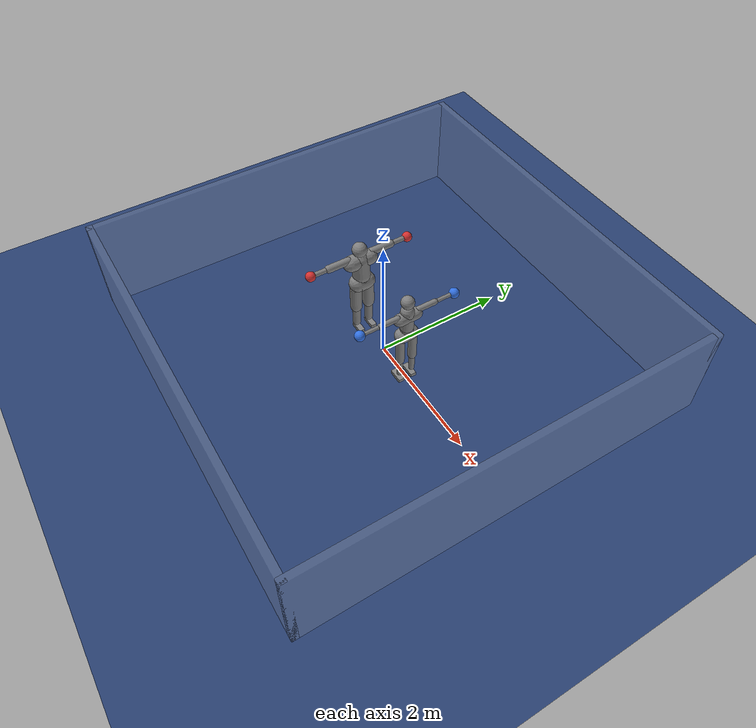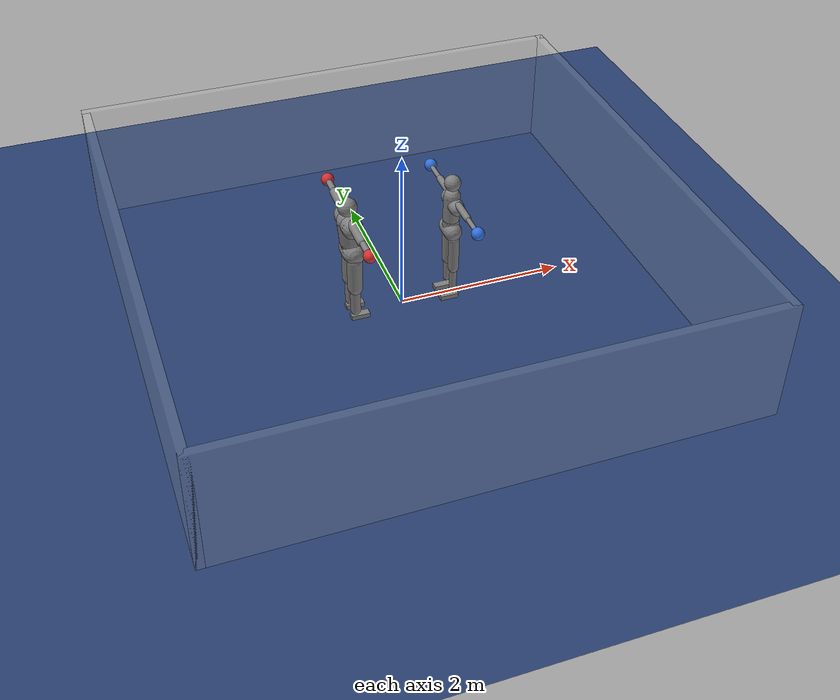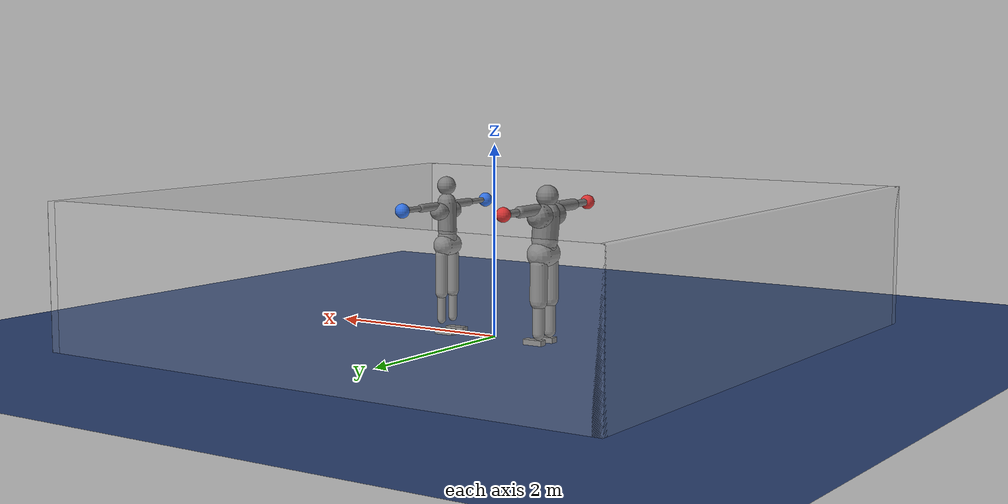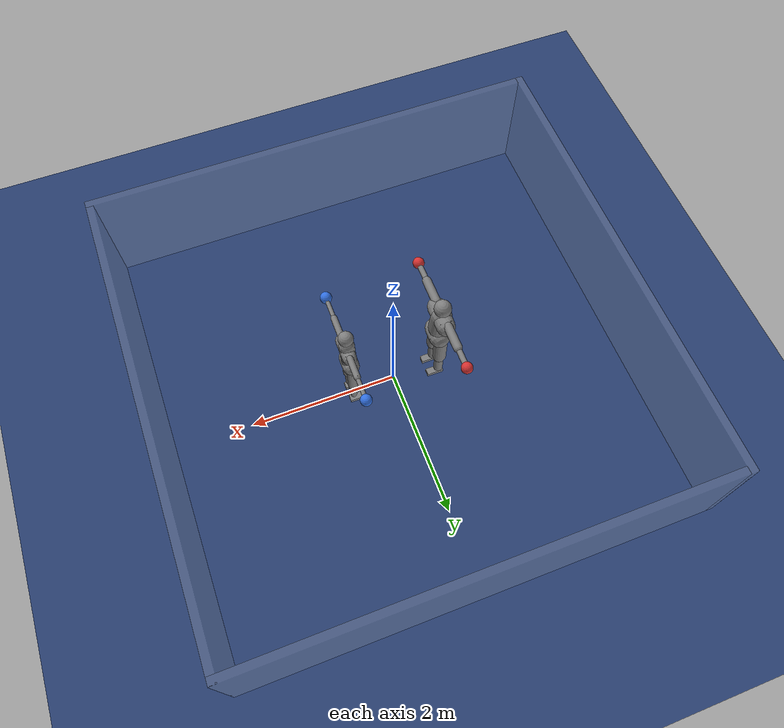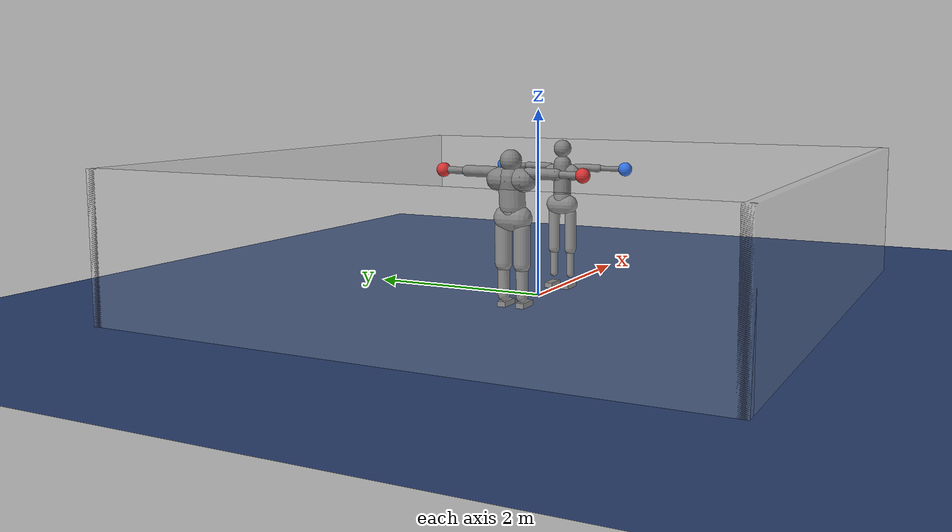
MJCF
<mujoco model="grandpa_vs_nick_spar">
  <compiler angle="degree" inertiafromgeom="true" autolimits="true"/>
  <option timestep="0.005" iterations="10" ls_iterations="10" integrator="implicitfast">
    <flag eulerdamp="disable"/>
  </option>
  <default>
    <geom contype="1" conaffinity="1" condim="3" friction="1.0 0.005 0.0001" density="1000" margin="0"/>
    <joint limited="true"/>
    <position ctrllimited="true"/>
  </default>
  <asset>
    <texture name="grid" type="2d" builtin="checker" rgb1=".18 .28 .48" rgb2=".14 .22 .40" width="300" height="300"/>
    <material name="grid" texture="grid" texrepeat="6 6" reflectance="0"/>
  </asset>
  <worldbody>
    <light pos="0 0 5" dir="0 0 -1" directional="true"/>
    <geom name="floor" type="plane" size="0 0 0.05" material="grid" friction="1.0 0.005 0.0001"/>
    <geom name="rope_n" type="box" pos="0.0000 3.1000 0.7500" size="3.1500 0.0500 0.7500" rgba="0.8 0.8 0.8 0.15"/>
    <geom name="rope_s" type="box" pos="0.0000 -3.1000 0.7500" size="3.1500 0.0500 0.7500" rgba="0.8 0.8 0.8 0.15"/>
    <geom name="rope_e" type="box" pos="3.1000 0.0000 0.7500" size="0.0500 3.1500 0.7500" rgba="0.8 0.8 0.8 0.15"/>
    <geom name="rope_w" type="box" pos="-3.1000 0.0000 0.7500" size="0.0500 3.1500 0.7500" rgba="0.8 0.8 0.8 0.15"/>
    <body name="a_pelvis" pos="-0.6000 0.0000 0.9146" quat="1.00000 0 0 0.00000">
      <freejoint name="a_root"/>
      <geom name="a_pelvis_geom" type="capsule" fromto="0.0000 -0.0700 0.0000 0.0000 0.0700 0.0000" size="0.1350" mass="6.7965" />
      <geom name="a_pelvis_up" type="capsule" fromto="0.0000 0.0000 0.0000 -0.0099 0.0000 0.0920" size="0.1215" mass="4.3789" />
      <body name="a_torso" pos="-0.0099 0.0000 0.1120">
        <joint name="a_abdomen_z" type="hinge" axis="0 0 1" range="-45 45" damping="0.5" armature="0.08" stiffness="0"/>
        <joint name="a_abdomen_y" type="hinge" axis="0 1 0" range="-60 30" damping="0.5" armature="0.08" stiffness="0"/>
        <joint name="a_abdomen_x" type="hinge" axis="1 0 0" range="-35 35" damping="0.5" armature="0.08" stiffness="0"/>
        <geom name="a_torso_geom" type="capsule" fromto="0.0000 0.0000 0.0200 -0.0268 0.0000 0.2932" size="0.1350" mass="27.9385" />
        <geom name="a_chest_geom" type="capsule" fromto="-0.0230 -0.1505 0.2866 -0.0230 0.1505 0.2866" size="0.1215" mass="0.5"/>
        <geom name="a_head_geom" type="sphere" pos="-0.0325 0.0000 0.4807" size="0.1127" mass="6.3747" />
        <body name="a_upper_arm_l" pos="-0.0287 0.1881 0.3582">
          <joint name="a_shoulder_x_l" type="hinge" axis="1 0 0" range="-170 30" damping="0.5" armature="0.03" stiffness="0"/>
          <joint name="a_shoulder_z_l" type="hinge" axis="0 0 1" range="-110 110" damping="0.5" armature="0.03" stiffness="0"/>
          <geom name="a_upper_arm_l_geom" type="capsule" fromto="0.0000 0.0000 0.0000 0.0000 0.3197 0.0000" size="0.0580" mass="2.2036" />
          <body name="a_forearm_l" pos="0.0000 0.3197 0.0000">
            <joint name="a_elbow_l" type="hinge" axis="0 0 1" range="-150 0" damping="0.5" armature="0.02" stiffness="0"/>
            <geom name="a_forearm_l_geom" type="capsule" fromto="0.0000 0.0000 0.0000 0.0000 0.2162 0.0000" size="0.0373" mass="1.2592" />
            <geom name="a_glove_l" type="sphere" pos="0.0000 0.2837 0.0000" size="0.0750" mass="0.7552" rgba="0.85 0.2 0.2 1"/>
          </body>
        </body>
        <body name="a_upper_arm_r" pos="-0.0287 -0.1881 0.3582">
          <joint name="a_shoulder_x_r" type="hinge" axis="1 0 0" range="-30 170" damping="0.5" armature="0.03" stiffness="0"/>
          <joint name="a_shoulder_z_r" type="hinge" axis="0 0 1" range="-110 110" damping="0.5" armature="0.03" stiffness="0"/>
          <geom name="a_upper_arm_r_geom" type="capsule" fromto="0.0000 0.0000 0.0000 0.0000 -0.3197 0.0000" size="0.0580" mass="2.2036" />
          <body name="a_forearm_r" pos="0.0000 -0.3197 0.0000">
            <joint name="a_elbow_r" type="hinge" axis="0 0 1" range="0 150" damping="0.5" armature="0.02" stiffness="0"/>
            <geom name="a_forearm_r_geom" type="capsule" fromto="0.0000 0.0000 0.0000 0.0000 -0.2162 0.0000" size="0.0373" mass="1.2592" />
            <geom name="a_glove_r" type="sphere" pos="0.0000 -0.2837 0.0000" size="0.0750" mass="0.7552" rgba="0.85 0.2 0.2 1"/>
          </body>
        </body>
      </body>
      <body name="a_thigh_l" pos="-0.0082 0.1049 -0.0932">
        <joint name="a_hip_x_l" type="hinge" axis="1 0 0" range="-40 40" damping="0.5" armature="0.1" stiffness="0"/>
        <joint name="a_hip_z_l" type="hinge" axis="0 0 1" range="-35 35" damping="0.5" armature="0.1" stiffness="0"/>
        <joint name="a_hip_y_l" type="hinge" axis="0 1 0" range="-120 30" damping="0.5" armature="0.1" stiffness="0"/>
        <geom name="a_thigh_l_geom" type="capsule" fromto="0.0000 0.0000 0.0000 0.0000 0.0000 -0.3769" size="0.0900" mass="7.8700" />
        <body name="a_shin_l" pos="0.0000 0.0000 -0.3769">
          <joint name="a_knee_l" type="hinge" axis="0 1 0" range="0 150" damping="0.5" armature="0.1" stiffness="0"/>
          <geom name="a_shin_l_geom" type="capsule" fromto="0.0000 0.0000 0.0000 0.0000 0.0000 -0.3360" size="0.0620" mass="3.6596" />
          <body name="a_foot_l" pos="0.0000 0.0000 -0.3360">
            <joint name="a_ankle_y_l" type="hinge" axis="0 1 0" range="-20 50" damping="0.5" armature="0.03" stiffness="0"/>
            <joint name="a_ankle_x_l" type="hinge" axis="1 0 0" range="-25 25" damping="0.5" armature="0.03" stiffness="0"/>
            <geom name="a_foot_l_geom" type="box" pos="0.0506 0.0000 -0.0887" size="0.1100 0.0450 0.0280" mass="1.1412" friction="1.0 0.005 0.0001"/>
            <site name="a_foot_l_site" pos="0.0506 0.0000 -0.0887" size="0.01"/>
          </body>
        </body>
      </body>
      <body name="a_thigh_r" pos="-0.0082 -0.1049 -0.0932">
        <joint name="a_hip_x_r" type="hinge" axis="1 0 0" range="-40 40" damping="0.5" armature="0.1" stiffness="0"/>
        <joint name="a_hip_z_r" type="hinge" axis="0 0 1" range="-35 35" damping="0.5" armature="0.1" stiffness="0"/>
        <joint name="a_hip_y_r" type="hinge" axis="0 1 0" range="-120 30" damping="0.5" armature="0.1" stiffness="0"/>
        <geom name="a_thigh_r_geom" type="capsule" fromto="0.0000 0.0000 0.0000 0.0000 0.0000 -0.3769" size="0.0900" mass="7.8700" />
        <body name="a_shin_r" pos="0.0000 0.0000 -0.3769">
          <joint name="a_knee_r" type="hinge" axis="0 1 0" range="0 150" damping="0.5" armature="0.1" stiffness="0"/>
          <geom name="a_shin_r_geom" type="capsule" fromto="0.0000 0.0000 0.0000 0.0000 0.0000 -0.3360" size="0.0620" mass="3.6596" />
          <body name="a_foot_r" pos="0.0000 0.0000 -0.3360">
            <joint name="a_ankle_y_r" type="hinge" axis="0 1 0" range="-20 50" damping="0.5" armature="0.03" stiffness="0"/>
            <joint name="a_ankle_x_r" type="hinge" axis="1 0 0" range="-25 25" damping="0.5" armature="0.03" stiffness="0"/>
            <geom name="a_foot_r_geom" type="box" pos="0.0506 0.0000 -0.0887" size="0.1100 0.0450 0.0280" mass="1.1412" friction="1.0 0.005 0.0001"/>
            <site name="a_foot_r_site" pos="0.0506 0.0000 -0.0887" size="0.01"/>
          </body>
        </body>
      </body>
    </body>
    <body name="b_pelvis" pos="0.6000 0.0000 0.9269" quat="0.00000 0 0 1.00000">
      <freejoint name="b_root"/>
      <geom name="b_pelvis_geom" type="capsule" fromto="0.0000 -0.0700 0.0000 0.0000 0.0700 0.0000" size="0.1090" mass="4.9049" />
      <geom name="b_pelvis_up" type="capsule" fromto="0.0000 0.0000 0.0000 -0.0026 0.0000 0.1033" size="0.0981" mass="3.2601" />
      <body name="b_torso" pos="-0.0026 0.0000 0.1233">
        <joint name="b_abdomen_z" type="hinge" axis="0 0 1" range="-45 45" damping="0.5" armature="0.08" stiffness="0"/>
        <joint name="b_abdomen_y" type="hinge" axis="0 1 0" range="-60 30" damping="0.5" armature="0.08" stiffness="0"/>
        <joint name="b_abdomen_x" type="hinge" axis="1 0 0" range="-35 35" damping="0.5" armature="0.08" stiffness="0"/>
        <geom name="b_torso_geom" type="capsule" fromto="0.0000 0.0000 0.0200 -0.0072 0.0000 0.3240" size="0.0987" mass="20.4125" />
        <geom name="b_chest_geom" type="capsule" fromto="-0.0187 -0.1313 0.2370 -0.0187 0.1313 0.2370" size="0.0888" mass="0.5"/>
        <geom name="b_head_geom" type="sphere" pos="-0.0087 0.0000 0.5025" size="0.0973" mass="4.6575" />
        <body name="b_upper_arm_l" pos="-0.0234 0.1641 0.2962">
          <joint name="b_shoulder_x_l" type="hinge" axis="1 0 0" range="-170 30" damping="0.5" armature="0.03" stiffness="0"/>
          <joint name="b_shoulder_z_l" type="hinge" axis="0 0 1" range="-110 110" damping="0.5" armature="0.03" stiffness="0"/>
          <geom name="b_upper_arm_l_geom" type="capsule" fromto="0.0000 0.0000 0.0000 0.0000 0.2664 0.0000" size="0.0419" mass="1.6100" />
          <body name="b_forearm_l" pos="0.0000 0.2664 0.0000">
            <joint name="b_elbow_l" type="hinge" axis="0 0 1" range="-150 0" damping="0.5" armature="0.02" stiffness="0"/>
            <geom name="b_forearm_l_geom" type="capsule" fromto="0.0000 0.0000 0.0000 0.0000 0.2467 0.0000" size="0.0280" mass="0.9200" />
            <geom name="b_glove_l" type="sphere" pos="0.0000 0.3142 0.0000" size="0.0750" mass="0.6280" rgba="0.2 0.45 0.9 1"/>
          </body>
        </body>
        <body name="b_upper_arm_r" pos="-0.0234 -0.1641 0.2962">
          <joint name="b_shoulder_x_r" type="hinge" axis="1 0 0" range="-30 170" damping="0.5" armature="0.03" stiffness="0"/>
          <joint name="b_shoulder_z_r" type="hinge" axis="0 0 1" range="-110 110" damping="0.5" armature="0.03" stiffness="0"/>
          <geom name="b_upper_arm_r_geom" type="capsule" fromto="0.0000 0.0000 0.0000 0.0000 -0.2664 0.0000" size="0.0419" mass="1.6100" />
          <body name="b_forearm_r" pos="0.0000 -0.2664 0.0000">
            <joint name="b_elbow_r" type="hinge" axis="0 0 1" range="0 150" damping="0.5" armature="0.02" stiffness="0"/>
            <geom name="b_forearm_r_geom" type="capsule" fromto="0.0000 0.0000 0.0000 0.0000 -0.2467 0.0000" size="0.0280" mass="0.9200" />
            <geom name="b_glove_r" type="sphere" pos="0.0000 -0.3142 0.0000" size="0.0750" mass="0.6280" rgba="0.2 0.45 0.9 1"/>
          </body>
        </body>
      </body>
      <body name="b_thigh_l" pos="-0.0079 0.1002 -0.0993">
        <joint name="b_hip_x_l" type="hinge" axis="1 0 0" range="-40 40" damping="0.5" armature="0.1" stiffness="0"/>
        <joint name="b_hip_z_l" type="hinge" axis="0 0 1" range="-35 35" damping="0.5" armature="0.1" stiffness="0"/>
        <joint name="b_hip_y_l" type="hinge" axis="0 1 0" range="-120 30" damping="0.5" armature="0.1" stiffness="0"/>
        <geom name="b_thigh_l_geom" type="capsule" fromto="0.0000 0.0000 0.0000 0.0000 0.0000 -0.4004" size="0.0639" mass="5.7500" />
        <body name="b_shin_l" pos="0.0000 0.0000 -0.4004">
          <joint name="b_knee_l" type="hinge" axis="0 1 0" range="0 150" damping="0.5" armature="0.1" stiffness="0"/>
          <geom name="b_shin_l_geom" type="capsule" fromto="0.0000 0.0000 0.0000 0.0000 0.0000 -0.2841" size="0.0429" mass="2.6738" />
          <body name="b_foot_l" pos="0.0000 0.0000 -0.2841">
            <joint name="b_ankle_y_l" type="hinge" axis="0 1 0" range="-20 50" damping="0.5" armature="0.03" stiffness="0"/>
            <joint name="b_ankle_x_l" type="hinge" axis="1 0 0" range="-25 25" damping="0.5" armature="0.03" stiffness="0"/>
            <geom name="b_foot_l_geom" type="box" pos="0.0506 0.0000 -0.1233" size="0.1100 0.0450 0.0280" mass="0.8337" friction="1.0 0.005 0.0001"/>
            <site name="b_foot_l_site" pos="0.0506 0.0000 -0.1233" size="0.01"/>
          </body>
        </body>
      </body>
      <body name="b_thigh_r" pos="-0.0079 -0.1002 -0.0993">
        <joint name="b_hip_x_r" type="hinge" axis="1 0 0" range="-40 40" damping="0.5" armature="0.1" stiffness="0"/>
        <joint name="b_hip_z_r" type="hinge" axis="0 0 1" range="-35 35" damping="0.5" armature="0.1" stiffness="0"/>
        <joint name="b_hip_y_r" type="hinge" axis="0 1 0" range="-120 30" damping="0.5" armature="0.1" stiffness="0"/>
        <geom name="b_thigh_r_geom" type="capsule" fromto="0.0000 0.0000 0.0000 0.0000 0.0000 -0.4004" size="0.0639" mass="5.7500" />
        <body name="b_shin_r" pos="0.0000 0.0000 -0.4004">
          <joint name="b_knee_r" type="hinge" axis="0 1 0" range="0 150" damping="0.5" armature="0.1" stiffness="0"/>
          <geom name="b_shin_r_geom" type="capsule" fromto="0.0000 0.0000 0.0000 0.0000 0.0000 -0.2841" size="0.0429" mass="2.6738" />
          <body name="b_foot_r" pos="0.0000 0.0000 -0.2841">
            <joint name="b_ankle_y_r" type="hinge" axis="0 1 0" range="-20 50" damping="0.5" armature="0.03" stiffness="0"/>
            <joint name="b_ankle_x_r" type="hinge" axis="1 0 0" range="-25 25" damping="0.5" armature="0.03" stiffness="0"/>
            <geom name="b_foot_r_geom" type="box" pos="0.0506 0.0000 -0.1233" size="0.1100 0.0450 0.0280" mass="0.8337" friction="1.0 0.005 0.0001"/>
            <site name="b_foot_r_site" pos="0.0506 0.0000 -0.1233" size="0.01"/>
          </body>
        </body>
      </body>
    </body>
  </worldbody>
  <contact>
    <exclude body1="a_pelvis" body2="a_torso"/>
    <exclude body1="a_pelvis" body2="a_thigh_l"/>
    <exclude body1="a_thigh_l" body2="a_shin_l"/>
    <exclude body1="a_shin_l" body2="a_foot_l"/>
    <exclude body1="a_torso" body2="a_upper_arm_l"/>
    <exclude body1="a_upper_arm_l" body2="a_forearm_l"/>
    <exclude body1="a_pelvis" body2="a_thigh_r"/>
    <exclude body1="a_thigh_r" body2="a_shin_r"/>
    <exclude body1="a_shin_r" body2="a_foot_r"/>
    <exclude body1="a_torso" body2="a_upper_arm_r"/>
    <exclude body1="a_upper_arm_r" body2="a_forearm_r"/>
    <exclude body1="b_pelvis" body2="b_torso"/>
    <exclude body1="b_pelvis" body2="b_thigh_l"/>
    <exclude body1="b_thigh_l" body2="b_shin_l"/>
    <exclude body1="b_shin_l" body2="b_foot_l"/>
    <exclude body1="b_torso" body2="b_upper_arm_l"/>
    <exclude body1="b_upper_arm_l" body2="b_forearm_l"/>
    <exclude body1="b_pelvis" body2="b_thigh_r"/>
    <exclude body1="b_thigh_r" body2="b_shin_r"/>
    <exclude body1="b_shin_r" body2="b_foot_r"/>
    <exclude body1="b_torso" body2="b_upper_arm_r"/>
    <exclude body1="b_upper_arm_r" body2="b_forearm_r"/>
  </contact>
  <actuator>
    <position name="a_abdomen_z" joint="a_abdomen_z" kp="216.45" kv="10.101" forcerange="-81.77 81.77" ctrlrange="-0.7854 0.7854"/>
    <position name="a_abdomen_y" joint="a_abdomen_y" kp="216.45" kv="10.101" forcerange="-81.77 81.77" ctrlrange="-1.0472 0.5236"/>
    <position name="a_abdomen_x" joint="a_abdomen_x" kp="216.45" kv="10.101" forcerange="-81.77 81.77" ctrlrange="-0.6109 0.6109"/>
    <position name="a_shoulder_x_l" joint="a_shoulder_x_l" kp="76.96" kv="3.848" forcerange="-48.1 48.1" ctrlrange="-2.9671 0.5236"/>
    <position name="a_shoulder_z_l" joint="a_shoulder_z_l" kp="76.96" kv="3.848" forcerange="-48.1 48.1" ctrlrange="-1.9199 1.9199"/>
    <position name="a_elbow_l" joint="a_elbow_l" kp="52.91" kv="2.645" forcerange="-33.67 33.67" ctrlrange="-2.6180 0.0000"/>
    <position name="a_shoulder_x_r" joint="a_shoulder_x_r" kp="76.96" kv="3.848" forcerange="-48.1 48.1" ctrlrange="-0.5236 2.9671"/>
    <position name="a_shoulder_z_r" joint="a_shoulder_z_r" kp="76.96" kv="3.848" forcerange="-48.1 48.1" ctrlrange="-1.9199 1.9199"/>
    <position name="a_elbow_r" joint="a_elbow_r" kp="52.91" kv="2.645" forcerange="-33.67 33.67" ctrlrange="0.0000 2.6180"/>
    <position name="a_hip_x_l" joint="a_hip_x_l" kp="288.6" kv="14.43" forcerange="-115.44 115.44" ctrlrange="-0.6981 0.6981"/>
    <position name="a_hip_z_l" joint="a_hip_z_l" kp="288.6" kv="14.43" forcerange="-115.44 115.44" ctrlrange="-0.6109 0.6109"/>
    <position name="a_hip_y_l" joint="a_hip_y_l" kp="288.6" kv="14.43" forcerange="-115.44 115.44" ctrlrange="-2.0944 0.5236"/>
    <position name="a_knee_l" joint="a_knee_l" kp="288.6" kv="14.43" forcerange="-125.06 125.06" ctrlrange="0.0000 2.6180"/>
    <position name="a_ankle_y_l" joint="a_ankle_y_l" kp="360.75" kv="14.43" forcerange="-105.82 105.82" ctrlrange="-0.3491 0.8727"/>
    <position name="a_ankle_x_l" joint="a_ankle_x_l" kp="38.48" kv="1.924" forcerange="-28.86 28.86" ctrlrange="-0.4363 0.4363"/>
    <position name="a_hip_x_r" joint="a_hip_x_r" kp="288.6" kv="14.43" forcerange="-115.44 115.44" ctrlrange="-0.6981 0.6981"/>
    <position name="a_hip_z_r" joint="a_hip_z_r" kp="288.6" kv="14.43" forcerange="-115.44 115.44" ctrlrange="-0.6109 0.6109"/>
    <position name="a_hip_y_r" joint="a_hip_y_r" kp="288.6" kv="14.43" forcerange="-115.44 115.44" ctrlrange="-2.0944 0.5236"/>
    <position name="a_knee_r" joint="a_knee_r" kp="288.6" kv="14.43" forcerange="-125.06 125.06" ctrlrange="0.0000 2.6180"/>
    <position name="a_ankle_y_r" joint="a_ankle_y_r" kp="360.75" kv="14.43" forcerange="-105.82 105.82" ctrlrange="-0.3491 0.8727"/>
    <position name="a_ankle_x_r" joint="a_ankle_x_r" kp="38.48" kv="1.924" forcerange="-28.86 28.86" ctrlrange="-0.4363 0.4363"/>
    <position name="b_abdomen_z" joint="b_abdomen_z" kp="373.95" kv="17.451" forcerange="-141.27 141.27" ctrlrange="-0.7854 0.7854"/>
    <position name="b_abdomen_y" joint="b_abdomen_y" kp="373.95" kv="17.451" forcerange="-141.27 141.27" ctrlrange="-1.0472 0.5236"/>
    <position name="b_abdomen_x" joint="b_abdomen_x" kp="373.95" kv="17.451" forcerange="-141.27 141.27" ctrlrange="-0.6109 0.6109"/>
    <position name="b_shoulder_x_l" joint="b_shoulder_x_l" kp="132.96" kv="6.648" forcerange="-83.1 83.1" ctrlrange="-2.9671 0.5236"/>
    <position name="b_shoulder_z_l" joint="b_shoulder_z_l" kp="132.96" kv="6.648" forcerange="-83.1 83.1" ctrlrange="-1.9199 1.9199"/>
    <position name="b_elbow_l" joint="b_elbow_l" kp="91.41" kv="4.571" forcerange="-58.17 58.17" ctrlrange="-2.6180 0.0000"/>
    <position name="b_shoulder_x_r" joint="b_shoulder_x_r" kp="132.96" kv="6.648" forcerange="-83.1 83.1" ctrlrange="-0.5236 2.9671"/>
    <position name="b_shoulder_z_r" joint="b_shoulder_z_r" kp="132.96" kv="6.648" forcerange="-83.1 83.1" ctrlrange="-1.9199 1.9199"/>
    <position name="b_elbow_r" joint="b_elbow_r" kp="91.41" kv="4.571" forcerange="-58.17 58.17" ctrlrange="0.0000 2.6180"/>
    <position name="b_hip_x_l" joint="b_hip_x_l" kp="498.6" kv="24.93" forcerange="-199.44 199.44" ctrlrange="-0.6981 0.6981"/>
    <position name="b_hip_z_l" joint="b_hip_z_l" kp="498.6" kv="24.93" forcerange="-199.44 199.44" ctrlrange="-0.6109 0.6109"/>
    <position name="b_hip_y_l" joint="b_hip_y_l" kp="498.6" kv="24.93" forcerange="-199.44 199.44" ctrlrange="-2.0944 0.5236"/>
    <position name="b_knee_l" joint="b_knee_l" kp="498.6" kv="24.93" forcerange="-216.06 216.06" ctrlrange="0.0000 2.6180"/>
    <position name="b_ankle_y_l" joint="b_ankle_y_l" kp="623.25" kv="24.93" forcerange="-182.82 182.82" ctrlrange="-0.3491 0.8727"/>
    <position name="b_ankle_x_l" joint="b_ankle_x_l" kp="66.48" kv="3.324" forcerange="-49.86 49.86" ctrlrange="-0.4363 0.4363"/>
    <position name="b_hip_x_r" joint="b_hip_x_r" kp="498.6" kv="24.93" forcerange="-199.44 199.44" ctrlrange="-0.6981 0.6981"/>
    <position name="b_hip_z_r" joint="b_hip_z_r" kp="498.6" kv="24.93" forcerange="-199.44 199.44" ctrlrange="-0.6109 0.6109"/>
    <position name="b_hip_y_r" joint="b_hip_y_r" kp="498.6" kv="24.93" forcerange="-199.44 199.44" ctrlrange="-2.0944 0.5236"/>
    <position name="b_knee_r" joint="b_knee_r" kp="498.6" kv="24.93" forcerange="-216.06 216.06" ctrlrange="0.0000 2.6180"/>
    <position name="b_ankle_y_r" joint="b_ankle_y_r" kp="623.25" kv="24.93" forcerange="-182.82 182.82" ctrlrange="-0.3491 0.8727"/>
    <position name="b_ankle_x_r" joint="b_ankle_x_r" kp="66.48" kv="3.324" forcerange="-49.86 49.86" ctrlrange="-0.4363 0.4363"/>
  </actuator>
  <keyframe>
    <key name="stand" qpos="-0.6000 0.0000 0.9062 1.00000 0 0 0.00000 0.0000 0.0000 0.0000 -1.3265 -0.7330 -1.9548 1.3265 0.7330 1.9548 0.0000 0.0000 -0.1782 0.4538 -0.2756 0.0000 0.0000 0.0000 -0.1782 0.4538 -0.2756 0.0000 0.6000 0.0000 0.9199 0.00000 0 0 1.00000 0.0000 0.0000 0.0000 -1.3265 -0.7330 -1.9548 1.3265 0.7330 1.9548 0.0000 0.0000 -0.1635 0.4538 -0.2902 0.0000 0.0000 0.0000 -0.1635 0.4538 -0.2902 0.0000"/>
  </keyframe>
</mujoco>
